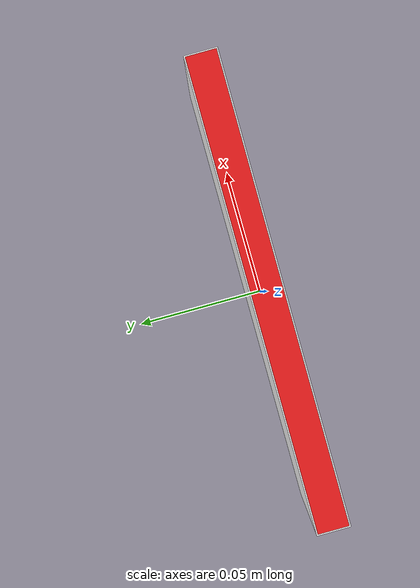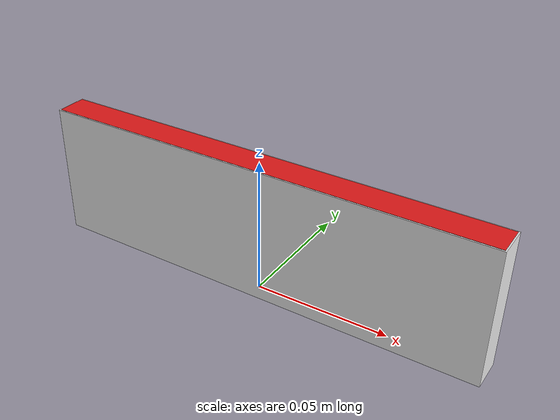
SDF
<?xml version="1.0"?>
<sdf version="1.8">
    <model name="maze_wall">
        <static>true</static>
        <link name="link">
            <pose>0 0 0.025 0 0 0</pose>
            <collision name="collision">
                <geometry>
                    <box>
                        <size>0.168 0.012 0.05</size>
                    </box>
                </geometry>
            </collision>
            <visual name="visual">
                <geometry>
                    <box>
                        <size>0.168 0.012 0.05</size>
                    </box>
                </geometry>
                <material>
                    <ambient>0.9 0.9 0.9 1</ambient>
                    <diffuse>0.9 0.9 0.9 1</diffuse>
                </material>
            </visual>
        </link>
        <link name="top">
            <pose>0 0 0.05005 0 0 0</pose>
            <visual name="visual">
                <geometry>
                    <box>
                        <size>0.167 0.011 0.0001</size>
                    </box>
                </geometry>
                <material>
                    <ambient>0.9 0.1 0.1 1</ambient>
                    <diffuse>0.9 0.1 0.1 1</diffuse>
                </material>
            </visual>
        </link>
    </model>
</sdf>
